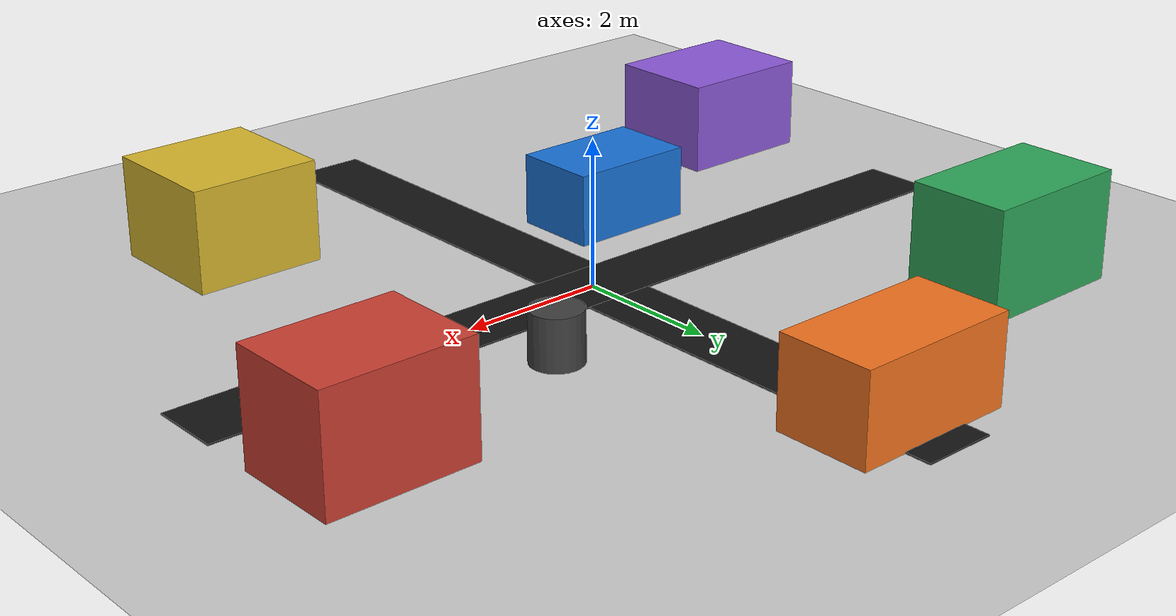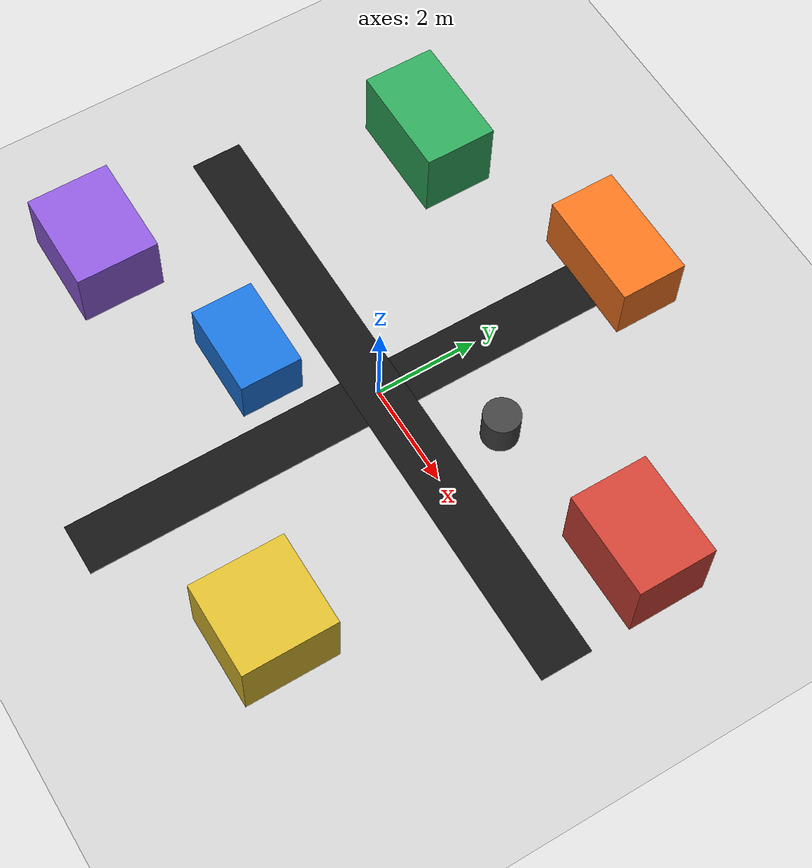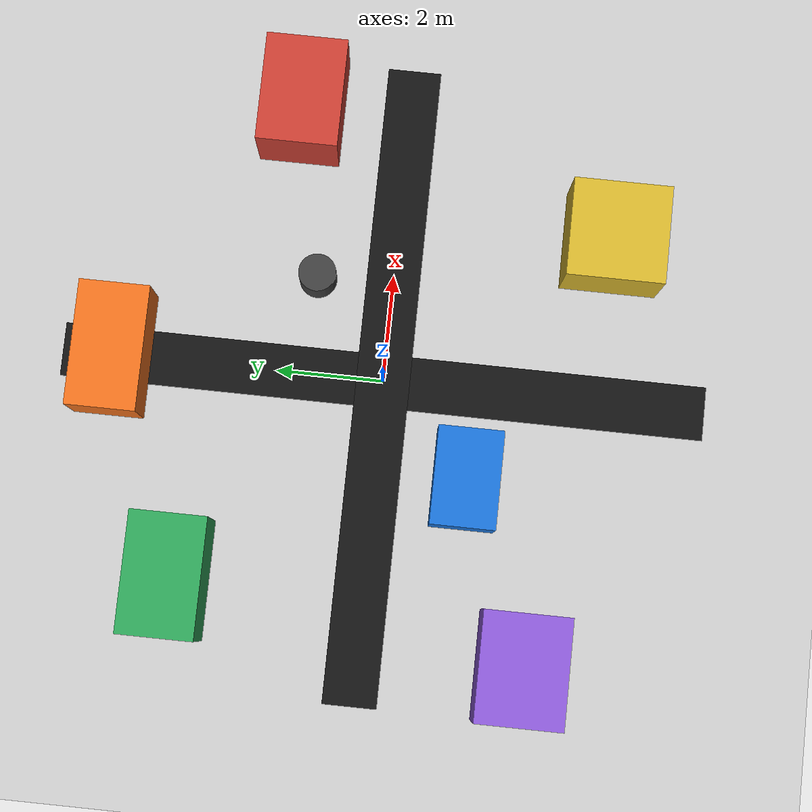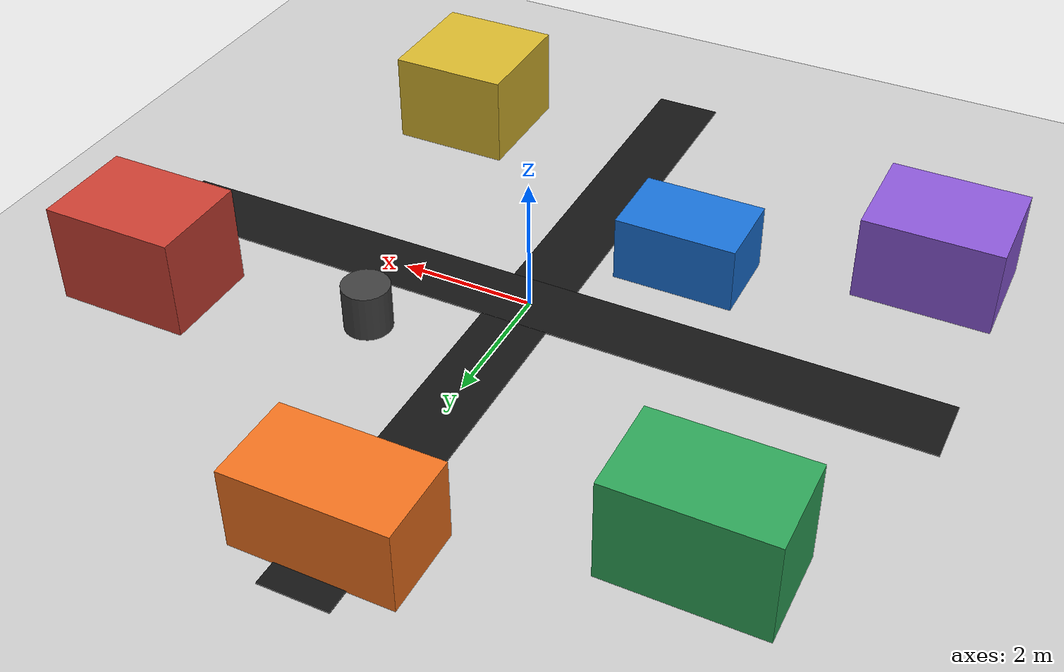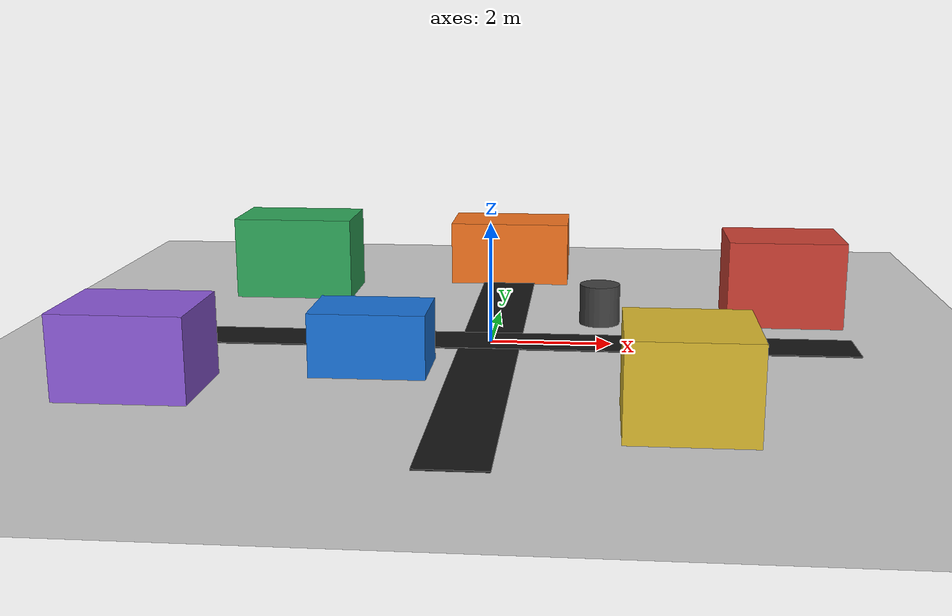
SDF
<?xml version="1.0" ?>
<sdf version="1.6">
  <world name="campus_delivery_world">
    <plugin name="gazebo_ros_init" filename="libgazebo_ros_init.so"/>
    <plugin name="gazebo_ros_factory" filename="libgazebo_ros_factory.so"/>

    <include>
      <uri>model://sun</uri>
    </include>
    <include>
      <uri>model://ground_plane</uri>
    </include>

    <scene>
      <ambient>0.55 0.55 0.55 1</ambient>
      <background>0.72 0.82 0.92 1</background>
    </scene>

    <model name="central_mail_room">
      <pose>-1.7 -1.7 0.5 0 0 0</pose>
      <static>true</static>
      <link name="body">
        <visual name="visual">
          <geometry><box><size>1.8 1.2 1.0</size></box></geometry>
          <material><ambient>0.1 0.45 0.85 1</ambient><diffuse>0.1 0.45 0.85 1</diffuse></material>
        </visual>
        <collision name="collision"><geometry><box><size>1.8 1.2 1.0</size></box></geometry></collision>
      </link>
    </model>

    <model name="library">
      <pose>5 2 0.75 0 0 0</pose>
      <static>true</static>
      <link name="body">
        <visual name="visual">
          <geometry><box><size>2.0 1.5 1.5</size></box></geometry>
          <material><ambient>0.8 0.25 0.2 1</ambient><diffuse>0.8 0.25 0.2 1</diffuse></material>
        </visual>
        <collision name="collision"><geometry><box><size>2.0 1.5 1.5</size></box></geometry></collision>
      </link>
    </model>

    <model name="engineering_lab">
      <pose>-4 3.5 0.75 0 0 0</pose>
      <static>true</static>
      <link name="body">
        <visual name="visual">
          <geometry><box><size>2.2 1.4 1.5</size></box></geometry>
          <material><ambient>0.18 0.65 0.35 1</ambient><diffuse>0.18 0.65 0.35 1</diffuse></material>
        </visual>
        <collision name="collision"><geometry><box><size>2.2 1.4 1.5</size></box></geometry></collision>
      </link>
    </model>

    <model name="admin_block">
      <pose>3 -4 0.7 0 0 0</pose>
      <static>true</static>
      <link name="body">
        <visual name="visual">
          <geometry><box><size>1.8 1.8 1.4</size></box></geometry>
          <material><ambient>0.85 0.72 0.18 1</ambient><diffuse>0.85 0.72 0.18 1</diffuse></material>
        </visual>
        <collision name="collision"><geometry><box><size>1.8 1.8 1.4</size></box></geometry></collision>
      </link>
    </model>

    <model name="hostel">
      <pose>-5 -3 0.65 0 0 0</pose>
      <static>true</static>
      <link name="body">
        <visual name="visual">
          <geometry><box><size>2.0 1.6 1.3</size></box></geometry>
          <material><ambient>0.55 0.35 0.85 1</ambient><diffuse>0.55 0.35 0.85 1</diffuse></material>
        </visual>
        <collision name="collision"><geometry><box><size>2.0 1.6 1.3</size></box></geometry></collision>
      </link>
    </model>

    <model name="cafeteria">
      <pose>0 5 0.6 0 0 0</pose>
      <static>true</static>
      <link name="body">
        <visual name="visual">
          <geometry><box><size>2.3 1.3 1.2</size></box></geometry>
          <material><ambient>0.95 0.45 0.12 1</ambient><diffuse>0.95 0.45 0.12 1</diffuse></material>
        </visual>
        <collision name="collision"><geometry><box><size>2.3 1.3 1.2</size></box></geometry></collision>
      </link>
    </model>

    <model name="road_north_south">
      <pose>0 0 0.011 0 0 0</pose>
      <static>true</static>
      <link name="road">
        <visual name="visual">
          <geometry><box><size>1.0 12.0 0.02</size></box></geometry>
          <material><ambient>0.08 0.08 0.08 1</ambient><diffuse>0.08 0.08 0.08 1</diffuse></material>
        </visual>
      </link>
    </model>

    <model name="road_east_west">
      <pose>0 0 0.012 0 0 0</pose>
      <static>true</static>
      <link name="road">
        <visual name="visual">
          <geometry><box><size>12.0 1.0 0.02</size></box></geometry>
          <material><ambient>0.08 0.08 0.08 1</ambient><diffuse>0.08 0.08 0.08 1</diffuse></material>
        </visual>
      </link>
    </model>

    <model name="courtyard_obstacle">
      <pose>1.8 1.4 0.35 0 0 0</pose>
      <static>true</static>
      <link name="body">
        <visual name="visual">
          <geometry><cylinder><radius>0.35</radius><length>0.7</length></cylinder></geometry>
          <material><ambient>0.25 0.25 0.25 1</ambient><diffuse>0.25 0.25 0.25 1</diffuse></material>
        </visual>
        <collision name="collision"><geometry><cylinder><radius>0.35</radius><length>0.7</length></cylinder></geometry></collision>
      </link>
    </model>
  </world>
</sdf>
